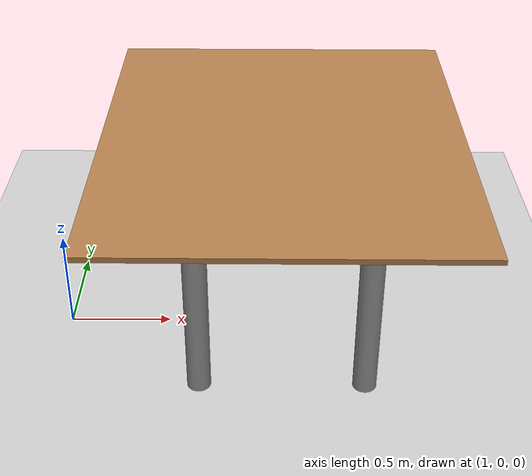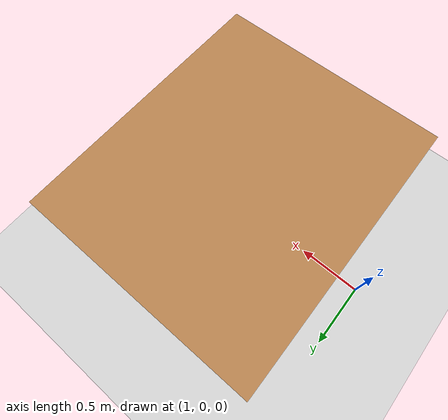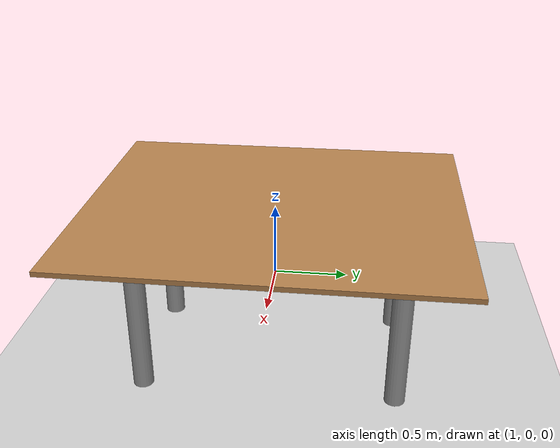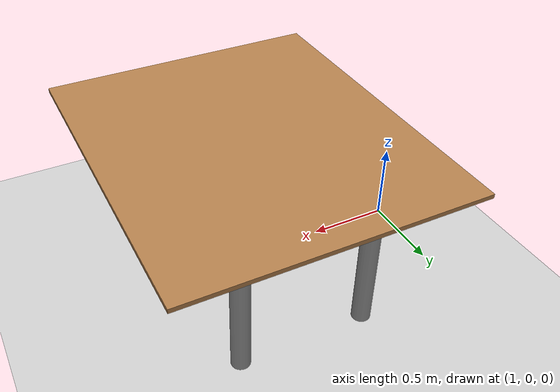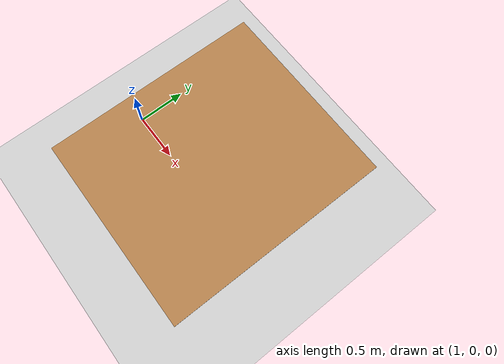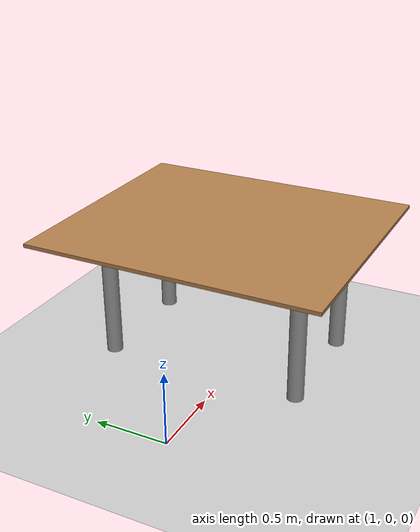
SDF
<sdf version="1.7">
 <world name="default">
  <light name="sun" type="directional">
   <pose>0 0 10 0 -0 0</pose>
   <diffuse>0.8 0.8 0.8 1</diffuse>
   <specular>0.2 0.2 0.2 1</specular>
   <attenuation>
    <range>1000</range>
    <constant>0.9</constant>
    <linear>0.01</linear>
    <quadratic>0.001</quadratic>
   </attenuation>
   <direction>-0.5 0.1 -0.9</direction>
   <spot><inner_angle>0</inner_angle><outer_angle>0</outer_angle><falloff>0</falloff></spot>
  </light>
  <model name="ground_plane">
   <static>1</static>
   <link name="link">
    <collision name="collision">
     <geometry><plane><normal>0 0 1</normal><size>100 100</size></plane></geometry>
     <surface><friction><ode><mu>100</mu><mu2>50</mu2></ode></friction></surface>
    </collision>
    <visual name="visual">
     <cast_shadows>0</cast_shadows>
     <geometry><plane><normal>0 0 1</normal><size>100 100</size></plane></geometry>
     <material>
      <script><uri>file://media/materials/scripts/gazebo.material</uri><name>Gazebo/Grey</name></script>
     </material>
    </visual>
   </link>
  </model>
  <gravity>0 0 -9.8</gravity>
  <magnetic_field>6e-06 2.3e-05 -4.2e-05</magnetic_field>
  <atmosphere type="adiabatic"/>
  <physics type="ode">
   <max_step_size>0.001</max_step_size>
   <real_time_factor>1</real_time_factor>
   <real_time_update_rate>1000</real_time_update_rate>
  </physics>
  <scene><ambient>0.4 0.4 0.4 1</ambient><background>0.7 0.7 0.7 1</background><shadows>1</shadows></scene>
  <audio><device>default</device></audio>
  <spherical_coordinates>
   <surface_model>EARTH_WGS84</surface_model>
   <latitude_deg>0</latitude_deg>
   <longitude_deg>0</longitude_deg>
   <elevation>0</elevation>
   <heading_deg>0</heading_deg>
  </spherical_coordinates>
  <model name="table">
   <link name="link">
    <inertial>
     <inertia><ixx>0</ixx><ixy>0</ixy><ixz>0</ixz><iyy>0</iyy><iyz>0</iyz><izz>0</izz></inertia>
     <mass>0</mass>
    </inertial>
    <visual name="visual1">
     <pose>0 0 1 0 -0 0</pose>
     <geometry><box><size>1.97768 1.70209 0.025618</size></box></geometry>
     <material>
      <script><uri>file://media/materials/scripts/gazebo.material</uri><name>Gazebo/Wood</name></script>
      <shader type="pixel"/>
     </material>
    </visual>
    <visual name="front_left_leg">
     <pose>0.68 0.38 0.5 0 -0 0</pose>
     <geometry><cylinder><radius>0.0546975</radius><length>0.839028</length></cylinder></geometry>
     <material>
      <script><uri>file://media/materials/scripts/gazebo.material</uri><name>Gazebo/Grey</name></script>
      <shader type="pixel"/>
     </material>
    </visual>
    <visual name="front_right_leg">
     <pose>0.68 -0.38 0.5 0 -0 0</pose>
     <geometry><cylinder><radius>0.0546975</radius><length>0.839028</length></cylinder></geometry>
     <material>
      <script><uri>file://media/materials/scripts/gazebo.material</uri><name>Gazebo/Grey</name></script>
      <shader type="pixel"/>
     </material>
    </visual>
    <visual name="back_right_leg">
     <pose>-0.68 -0.38 0.5 0 -0 0</pose>
     <geometry><cylinder><radius>0.0546975</radius><length>0.839028</length></cylinder></geometry>
     <material>
      <script><uri>file://media/materials/scripts/gazebo.material</uri><name>Gazebo/Grey</name></script>
      <shader type="pixel"/>
     </material>
    </visual>
    <visual name="back_left_leg">
     <pose>-0.68 0.38 0.5 0 -0 0</pose>
     <geometry><cylinder><radius>0.0546975</radius><length>0.839028</length></cylinder></geometry>
     <material>
      <script><uri>file://media/materials/scripts/gazebo.material</uri><name>Gazebo/Grey</name></script>
      <shader type="pixel"/>
     </material>
    </visual>
    <collision name="surface">
     <pose>0 0 1 0 -0 0</pose>
     <geometry><box><size>1.97768 1.70209 0.025618</size></box></geometry>
     <surface>
      <friction>
       <ode><mu>0.6</mu><mu2>0.6</mu2><fdir1>0 0 0</fdir1><slip1>0</slip1><slip2>0</slip2></ode>
       <torsional>
        <coefficient>1</coefficient>
        <patch_radius>0</patch_radius>
        <surface_radius>0</surface_radius>
        <use_patch_radius>1</use_patch_radius>
        <ode><slip>0</slip></ode>
       </torsional>
      </friction>
      <bounce><restitution_coefficient>0</restitution_coefficient><threshold>1e+06</threshold></bounce>
      <contact>
       <collide_without_contact>0</collide_without_contact>
       <collide_without_contact_bitmask>1</collide_without_contact_bitmask>
       <collide_bitmask>1</collide_bitmask>
       <ode>
        <soft_cfm>0</soft_cfm>
        <soft_erp>0.2</soft_erp>
        <kp>1e+13</kp>
        <kd>1</kd>
        <max_vel>0.01</max_vel>
        <min_depth>0</min_depth>
       </ode>
       <bullet>
        <split_impulse>1</split_impulse>
        <split_impulse_penetration_threshold>-0.01</split_impulse_penetration_threshold>
        <soft_cfm>0</soft_cfm>
        <soft_erp>0.2</soft_erp>
        <kp>1e+13</kp>
        <kd>1</kd>
       </bullet>
      </contact>
     </surface>
    </collision>
    <collision name="front_left_leg">
     <pose>0.68 0.38 0.5 0 -0 0</pose>
     <geometry><cylinder><radius>0.054697</radius><length>0.839028</length></cylinder></geometry>
     <surface>
      <friction>
       <ode><mu>1</mu><mu2>1</mu2><fdir1>0 0 0</fdir1><slip1>0</slip1><slip2>0</slip2></ode>
       <torsional>
        <coefficient>1</coefficient>
        <patch_radius>0</patch_radius>
        <surface_radius>0</surface_radius>
        <use_patch_radius>1</use_patch_radius>
        <ode><slip>0</slip></ode>
       </torsional>
      </friction>
      <bounce><restitution_coefficient>0</restitution_coefficient><threshold>1e+06</threshold></bounce>
      <contact>
       <collide_without_contact>0</collide_without_contact>
       <collide_without_contact_bitmask>1</collide_without_contact_bitmask>
       <collide_bitmask>1</collide_bitmask>
       <ode>
        <soft_cfm>0</soft_cfm>
        <soft_erp>0.2</soft_erp>
        <kp>1e+13</kp>
        <kd>1</kd>
        <max_vel>0.01</max_vel>
        <min_depth>0</min_depth>
       </ode>
       <bullet>
        <split_impulse>1</split_impulse>
        <split_impulse_penetration_threshold>-0.01</split_impulse_penetration_threshold>
        <soft_cfm>0</soft_cfm>
        <soft_erp>0.2</soft_erp>
        <kp>1e+13</kp>
        <kd>1</kd>
       </bullet>
      </contact>
     </surface>
    </collision>
    <collision name="front_right_leg">
     <pose>0.68 -0.38 0.5 0 -0 0</pose>
     <geometry><cylinder><radius>0.054697</radius><length>0.839028</length></cylinder></geometry>
     <surface>
      <friction>
       <ode><mu>1</mu><mu2>1</mu2><fdir1>0 0 0</fdir1><slip1>0</slip1><slip2>0</slip2></ode>
       <torsional>
        <coefficient>1</coefficient>
        <patch_radius>0</patch_radius>
        <surface_radius>0</surface_radius>
        <use_patch_radius>1</use_patch_radius>
        <ode><slip>0</slip></ode>
       </torsional>
      </friction>
      <bounce><restitution_coefficient>0</restitution_coefficient><threshold>1e+06</threshold></bounce>
      <contact>
       <collide_without_contact>0</collide_without_contact>
       <collide_without_contact_bitmask>1</collide_without_contact_bitmask>
       <collide_bitmask>1</collide_bitmask>
       <ode>
        <soft_cfm>0</soft_cfm>
        <soft_erp>0.2</soft_erp>
        <kp>1e+13</kp>
        <kd>1</kd>
        <max_vel>0.01</max_vel>
        <min_depth>0</min_depth>
       </ode>
       <bullet>
        <split_impulse>1</split_impulse>
        <split_impulse_penetration_threshold>-0.01</split_impulse_penetration_threshold>
        <soft_cfm>0</soft_cfm>
        <soft_erp>0.2</soft_erp>
        <kp>1e+13</kp>
        <kd>1</kd>
       </bullet>
      </contact>
     </surface>
    </collision>
    <collision name="back_right_leg">
     <pose>-0.68 -0.38 0.5 0 -0 0</pose>
     <geometry><cylinder><radius>0.054697</radius><length>0.839028</length></cylinder></geometry>
     <surface>
      <friction>
       <ode><mu>1</mu><mu2>1</mu2><fdir1>0 0 0</fdir1><slip1>0</slip1><slip2>0</slip2></ode>
       <torsional>
        <coefficient>1</coefficient>
        <patch_radius>0</patch_radius>
        <surface_radius>0</surface_radius>
        <use_patch_radius>1</use_patch_radius>
        <ode><slip>0</slip></ode>
       </torsional>
      </friction>
      <bounce><restitution_coefficient>0</restitution_coefficient><threshold>1e+06</threshold></bounce>
      <contact>
       <collide_without_contact>0</collide_without_contact>
       <collide_without_contact_bitmask>1</collide_without_contact_bitmask>
       <collide_bitmask>1</collide_bitmask>
       <ode>
        <soft_cfm>0</soft_cfm>
        <soft_erp>0.2</soft_erp>
        <kp>1e+13</kp>
        <kd>1</kd>
        <max_vel>0.01</max_vel>
        <min_depth>0</min_depth>
       </ode>
       <bullet>
        <split_impulse>1</split_impulse>
        <split_impulse_penetration_threshold>-0.01</split_impulse_penetration_threshold>
        <soft_cfm>0</soft_cfm>
        <soft_erp>0.2</soft_erp>
        <kp>1e+13</kp>
        <kd>1</kd>
       </bullet>
      </contact>
     </surface>
    </collision>
    <collision name="back_left_leg">
     <pose>-0.68 0.38 0.5 0 -0 0</pose>
     <geometry><cylinder><radius>0.054697</radius><length>0.839028</length></cylinder></geometry>
     <surface>
      <friction>
       <ode><mu>1</mu><mu2>1</mu2><fdir1>0 0 0</fdir1><slip1>0</slip1><slip2>0</slip2></ode>
       <torsional>
        <coefficient>1</coefficient>
        <patch_radius>0</patch_radius>
        <surface_radius>0</surface_radius>
        <use_patch_radius>1</use_patch_radius>
        <ode><slip>0</slip></ode>
       </torsional>
      </friction>
      <bounce><restitution_coefficient>0</restitution_coefficient><threshold>1e+06</threshold></bounce>
      <contact>
       <collide_without_contact>0</collide_without_contact>
       <collide_without_contact_bitmask>1</collide_without_contact_bitmask>
       <collide_bitmask>1</collide_bitmask>
       <ode>
        <soft_cfm>0</soft_cfm>
        <soft_erp>0.2</soft_erp>
        <kp>1e+13</kp>
        <kd>1</kd>
        <max_vel>0.01</max_vel>
        <min_depth>0</min_depth>
       </ode>
       <bullet>
        <split_impulse>1</split_impulse>
        <split_impulse_penetration_threshold>-0.01</split_impulse_penetration_threshold>
        <soft_cfm>0</soft_cfm>
        <soft_erp>0.2</soft_erp>
        <kp>1e+13</kp>
        <kd>1</kd>
       </bullet>
      </contact>
     </surface>
    </collision>
   </link>
   <static>1</static>
   <pose>2.06651 0.123876 0 0 -0 1.56856</pose>
  </model>
 </world>
</sdf>
